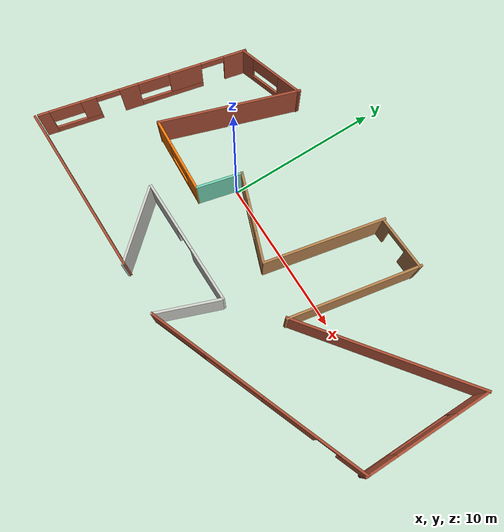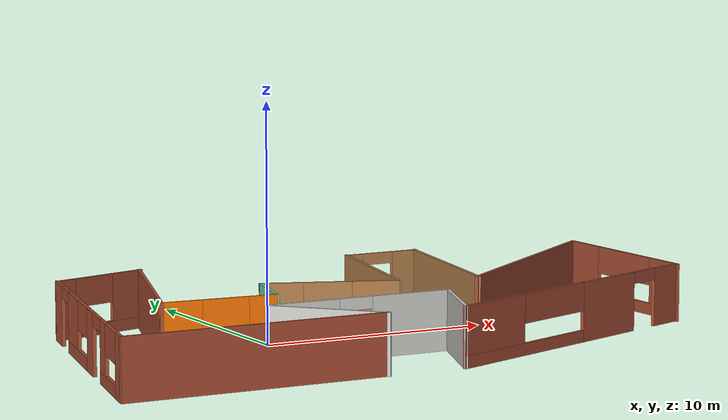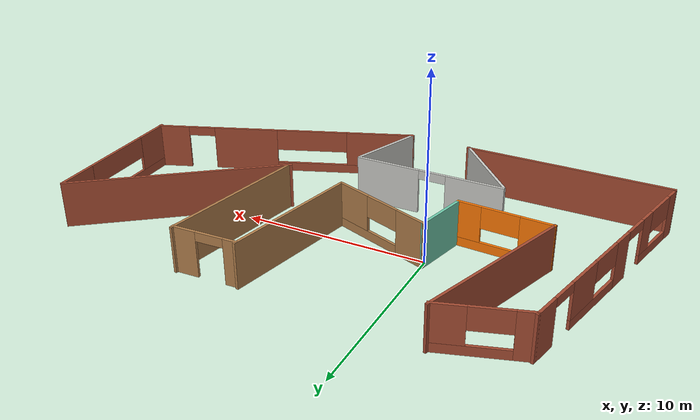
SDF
<?xml version='1.0'?>
<sdf version='1.6'>
  <model name='my_building'>
    <pose frame=''>4.00146 -0.959749 0 0 -0 0</pose>
    <link name='Wall_10'>
      <pose frame=''>-7.20518 -1.23967 0 0 0 -0.053362</pose>
      <visual name='Wall_10_Visual_0'>
        <pose frame=''>-1.65873 0 1.25 0 -0 0</pose>
        <geometry>
          <box>
            <size>1.79088 0.15 2.5</size>
          </box>
        </geometry>
        <material>
          <script>
            <uri>file://media/materials/scripts/gazebo.material</uri>
            <name>Gazebo/Grey</name>
          </script>
          <ambient>0.996078 0.47451 0.0196078 1</ambient>
        </material>
      </visual>
      <collision name='Wall_10_Collision_0'>
        <geometry>
          <box>
            <size>1.79088 0.15 2.5</size>
          </box>
        </geometry>
        <pose frame=''>-1.65873 0 1.25 0 -0 0</pose>
      </collision>
      <visual name='Wall_10_Visual_1'>
        <pose frame=''>0.895442 0 0.25 0 -0 0</pose>
        <geometry>
          <box>
            <size>3.31746 0.15 0.5</size>
          </box>
        </geometry>
        <material>
          <script>
            <uri>file://media/materials/scripts/gazebo.material</uri>
            <name>Gazebo/Grey</name>
          </script>
          <ambient>0.996078 0.47451 0.0196078 1</ambient>
        </material>
      </visual>
      <collision name='Wall_10_Collision_1'>
        <geometry>
          <box>
            <size>3.31746 0.15 0.5</size>
          </box>
        </geometry>
        <pose frame=''>0.895442 0 0.25 0 -0 0</pose>
      </collision>
      <visual name='Wall_10_Visual_2'>
        <pose frame=''>1.89544 0 1.5 0 -0 0</pose>
        <geometry>
          <box>
            <size>1.31746 0.15 2</size>
          </box>
        </geometry>
        <material>
          <script>
            <uri>file://media/materials/scripts/gazebo.material</uri>
            <name>Gazebo/Grey</name>
          </script>
          <ambient>0.996078 0.47451 0.0196078 1</ambient>
        </material>
      </visual>
      <collision name='Wall_10_Collision_2'>
        <geometry>
          <box>
            <size>1.31746 0.15 2</size>
          </box>
        </geometry>
        <pose frame=''>1.89544 0 1.5 0 -0 0</pose>
      </collision>
      <visual name='Wall_10_Visual_3'>
        <pose frame=''>0.236711 0 1.9 0 -0 0</pose>
        <geometry>
          <box>
            <size>2 0.15 1.2</size>
          </box>
        </geometry>
        <material>
          <script>
            <uri>file://media/materials/scripts/gazebo.material</uri>
            <name>Gazebo/Grey</name>
          </script>
          <ambient>0.996078 0.47451 0.0196078 1</ambient>
        </material>
      </visual>
      <collision name='Wall_10_Collision_3'>
        <geometry>
          <box>
            <size>2 0.15 1.2</size>
          </box>
        </geometry>
        <pose frame=''>0.236711 0 1.9 0 -0 0</pose>
      </collision>
    </link>
    <link name='Wall_11'>
      <collision name='Wall_11_Collision'>
        <geometry>
          <box>
            <size>3.02948 0.15 2.5</size>
          </box>
        </geometry>
        <pose frame=''>0 0 1.25 0 -0 0</pose>
      </collision>
      <visual name='Wall_11_Visual'>
        <pose frame=''>0 0 1.25 0 -0 0</pose>
        <geometry>
          <box>
            <size>3.02948 0.15 2.5</size>
          </box>
        </geometry>
        <material>
          <script>
            <uri>file://media/materials/scripts/gazebo.material</uri>
            <name>Gazebo/Grey</name>
          </script>
          <ambient>0.435294 0.796078 0.67451 1</ambient>
        </material>
      </visual>
      <pose frame=''>-4.3944 0.028361 0 0 -0 1.33612</pose>
    </link>
    <link name='Wall_12'>
      <pose frame=''>-1.39731 0.461222 0 0 0 -0.348539</pose>
      <visual name='Wall_12_Visual_0'>
        <pose frame=''>-1.99563 0 1.25 0 -0 0</pose>
        <geometry>
          <box>
            <size>1.82401 0.15 2.5</size>
          </box>
        </geometry>
        <material>
          <script>
            <uri>file://media/materials/scripts/gazebo.material</uri>
            <name>Gazebo/Wood</name>
          </script>
          <ambient>0.435294 0.796078 0.67451 1</ambient>
        </material>
      </visual>
      <collision name='Wall_12_Collision_0'>
        <geometry>
          <box>
            <size>1.82401 0.15 2.5</size>
          </box>
        </geometry>
        <pose frame=''>-1.99563 0 1.25 0 -0 0</pose>
      </collision>
      <visual name='Wall_12_Visual_1'>
        <pose frame=''>0.912006 0 0.25 0 -0 0</pose>
        <geometry>
          <box>
            <size>3.99125 0.15 0.5</size>
          </box>
        </geometry>
        <material>
          <script>
            <uri>file://media/materials/scripts/gazebo.material</uri>
            <name>Gazebo/Wood</name>
          </script>
          <ambient>0.435294 0.796078 0.67451 1</ambient>
        </material>
      </visual>
      <collision name='Wall_12_Collision_1'>
        <geometry>
          <box>
            <size>3.99125 0.15 0.5</size>
          </box>
        </geometry>
        <pose frame=''>0.912006 0 0.25 0 -0 0</pose>
      </collision>
      <visual name='Wall_12_Visual_2'>
        <pose frame=''>1.91201 0 1.5 0 -0 0</pose>
        <geometry>
          <box>
            <size>1.99125 0.15 2</size>
          </box>
        </geometry>
        <material>
          <script>
            <uri>file://media/materials/scripts/gazebo.material</uri>
            <name>Gazebo/Wood</name>
          </script>
          <ambient>0.435294 0.796078 0.67451 1</ambient>
        </material>
      </visual>
      <collision name='Wall_12_Collision_2'>
        <geometry>
          <box>
            <size>1.99125 0.15 2</size>
          </box>
        </geometry>
        <pose frame=''>1.91201 0 1.5 0 -0 0</pose>
      </collision>
      <visual name='Wall_12_Visual_3'>
        <pose frame=''>-0.083621 0 1.9 0 -0 0</pose>
        <geometry>
          <box>
            <size>2 0.15 1.2</size>
          </box>
        </geometry>
        <material>
          <script>
            <uri>file://media/materials/scripts/gazebo.material</uri>
            <name>Gazebo/Wood</name>
          </script>
          <ambient>0.435294 0.796078 0.67451 1</ambient>
        </material>
      </visual>
      <collision name='Wall_12_Collision_3'>
        <geometry>
          <box>
            <size>2 0.15 1.2</size>
          </box>
        </geometry>
        <pose frame=''>-0.083621 0 1.9 0 -0 0</pose>
      </collision>
    </link>
    <link name='Wall_13'>
      <collision name='Wall_13_Collision'>
        <geometry>
          <box>
            <size>7.73883 0.15 2.5</size>
          </box>
        </geometry>
        <pose frame=''>0 0 1.25 0 -0 0</pose>
      </collision>
      <visual name='Wall_13_Visual'>
        <pose frame=''>0 0 1.25 0 -0 0</pose>
        <geometry>
          <box>
            <size>7.73883 0.15 2.5</size>
          </box>
        </geometry>
        <material>
          <script>
            <uri>file://media/materials/scripts/gazebo.material</uri>
            <name>Gazebo/Wood</name>
          </script>
          <ambient>0.435294 0.796078 0.67451 1</ambient>
        </material>
      </visual>
      <pose frame=''>2.1093 3.20845 0 0 -0 1.36539</pose>
    </link>
    <link name='Wall_14'>
      <pose frame=''>4.60393 6.87033 0 0 -0 0.030657</pose>
      <visual name='Wall_14_Visual_0'>
        <pose frame=''>-1.41036 0 1.25 0 -0 0</pose>
        <geometry>
          <box>
            <size>0.772303 0.15 2.5</size>
          </box>
        </geometry>
        <material>
          <script>
            <uri>file://media/materials/scripts/gazebo.material</uri>
            <name>Gazebo/Wood</name>
          </script>
          <ambient>1 1 1 1</ambient>
        </material>
      </visual>
      <collision name='Wall_14_Collision_0'>
        <geometry>
          <box>
            <size>0.772303 0.15 2.5</size>
          </box>
        </geometry>
        <pose frame=''>-1.41036 0 1.25 0 -0 0</pose>
      </collision>
      <visual name='Wall_14_Visual_1'>
        <pose frame=''>1.13615 0 1.25 0 -0 0</pose>
        <geometry>
          <box>
            <size>1.32072 0.15 2.5</size>
          </box>
        </geometry>
        <material>
          <script>
            <uri>file://media/materials/scripts/gazebo.material</uri>
            <name>Gazebo/Wood</name>
          </script>
          <ambient>1 1 1 1</ambient>
        </material>
      </visual>
      <collision name='Wall_14_Collision_1'>
        <geometry>
          <box>
            <size>1.32072 0.15 2.5</size>
          </box>
        </geometry>
        <pose frame=''>1.13615 0 1.25 0 -0 0</pose>
      </collision>
      <visual name='Wall_14_Visual_2'>
        <pose frame=''>-0.27421 0 2.25 0 -0 0</pose>
        <geometry>
          <box>
            <size>1.5 0.15 0.5</size>
          </box>
        </geometry>
        <material>
          <script>
            <uri>file://media/materials/scripts/gazebo.material</uri>
            <name>Gazebo/Wood</name>
          </script>
          <ambient>1 1 1 1</ambient>
        </material>
      </visual>
      <collision name='Wall_14_Collision_2'>
        <geometry>
          <box>
            <size>1.5 0.15 0.5</size>
          </box>
        </geometry>
        <pose frame=''>-0.27421 0 2.25 0 -0 0</pose>
      </collision>
    </link>
    <link name='Wall_15'>
      <collision name='Wall_15_Collision'>
        <geometry>
          <box>
            <size>8.47447 0.15 2.5</size>
          </box>
        </geometry>
        <pose frame=''>0 0 1.25 0 -0 0</pose>
      </collision>
      <visual name='Wall_15_Visual'>
        <pose frame=''>0 0 1.25 0 -0 0</pose>
        <geometry>
          <box>
            <size>8.47447 0.15 2.5</size>
          </box>
        </geometry>
        <material>
          <script>
            <uri>file://media/materials/scripts/gazebo.material</uri>
            <name>Gazebo/Wood</name>
          </script>
          <ambient>1 1 1 1</ambient>
        </material>
      </visual>
      <pose frame=''>5.55071 2.93899 0 0 0 -1.75783</pose>
    </link>
    <link name='Wall_16'>
      <collision name='Wall_16_Collision'>
        <geometry>
          <box>
            <size>11.8484 0.15 2.5</size>
          </box>
        </geometry>
        <pose frame=''>0 0 1.25 0 -0 0</pose>
      </collision>
      <visual name='Wall_16_Visual'>
        <pose frame=''>0 0 1.25 0 -0 0</pose>
        <geometry>
          <box>
            <size>11.8484 0.15 2.5</size>
          </box>
        </geometry>
        <material>
          <script>
            <uri>file://media/materials/scripts/gazebo.material</uri>
            <name>Gazebo/Bricks</name>
          </script>
          <ambient>0.760784 0.662745 0.627451 1</ambient>
        </material>
      </visual>
      <pose frame=''>9.36619 2.38481 0 0 -0 0.649059</pose>
    </link>
    <link name='Wall_17'>
      <pose frame=''>14.026 1.76474 0 0 0 -1.5708</pose>
      <visual name='Wall_17_Visual_0'>
        <pose frame=''>-3.02356 0 1.25 0 -0 0</pose>
        <geometry>
          <box>
            <size>2.20289 0.15 2.5</size>
          </box>
        </geometry>
        <material>
          <script>
            <uri>file://media/materials/scripts/gazebo.material</uri>
            <name>Gazebo/Bricks</name>
          </script>
          <ambient>0.760784 0.662745 0.627451 1</ambient>
        </material>
      </visual>
      <collision name='Wall_17_Collision_0'>
        <geometry>
          <box>
            <size>2.20289 0.15 2.5</size>
          </box>
        </geometry>
        <pose frame=''>-3.02356 0 1.25 0 -0 0</pose>
      </collision>
      <visual name='Wall_17_Visual_1'>
        <pose frame=''>1.10144 0 0.25 0 -0 0</pose>
        <geometry>
          <box>
            <size>6.04711 0.15 0.5</size>
          </box>
        </geometry>
        <material>
          <script>
            <uri>file://media/materials/scripts/gazebo.material</uri>
            <name>Gazebo/Bricks</name>
          </script>
          <ambient>0.760784 0.662745 0.627451 1</ambient>
        </material>
      </visual>
      <collision name='Wall_17_Collision_1'>
        <geometry>
          <box>
            <size>6.04711 0.15 0.5</size>
          </box>
        </geometry>
        <pose frame=''>1.10144 0 0.25 0 -0 0</pose>
      </collision>
      <visual name='Wall_17_Visual_2'>
        <pose frame=''>3.10144 0 1.5 0 -0 0</pose>
        <geometry>
          <box>
            <size>2.04711 0.15 2</size>
          </box>
        </geometry>
        <material>
          <script>
            <uri>file://media/materials/scripts/gazebo.material</uri>
            <name>Gazebo/Bricks</name>
          </script>
          <ambient>0.760784 0.662745 0.627451 1</ambient>
        </material>
      </visual>
      <collision name='Wall_17_Collision_2'>
        <geometry>
          <box>
            <size>2.04711 0.15 2</size>
          </box>
        </geometry>
        <pose frame=''>3.10144 0 1.5 0 -0 0</pose>
      </collision>
      <visual name='Wall_17_Visual_3'>
        <pose frame=''>0.077887 0 1.9 0 -0 0</pose>
        <geometry>
          <box>
            <size>4 0.15 1.2</size>
          </box>
        </geometry>
        <material>
          <script>
            <uri>file://media/materials/scripts/gazebo.material</uri>
            <name>Gazebo/Bricks</name>
          </script>
          <ambient>0.760784 0.662745 0.627451 1</ambient>
        </material>
      </visual>
      <collision name='Wall_17_Collision_3'>
        <geometry>
          <box>
            <size>4 0.15 1.2</size>
          </box>
        </geometry>
        <pose frame=''>0.077887 0 1.9 0 -0 0</pose>
      </collision>
    </link>
    <link name='Wall_18'>
      <pose frame=''>7.23317 -4.80054 0 0 0 -2.77337</pose>
      <visual name='Wall_18_Visual_0'>
        <pose frame=''>-6.47131 0 1.25 0 -0 0</pose>
        <geometry>
          <box>
            <size>1.76906 0.15 2.5</size>
          </box>
        </geometry>
        <material>
          <script>
            <uri>file://media/materials/scripts/gazebo.material</uri>
            <name>Gazebo/Bricks</name>
          </script>
          <ambient>0.760784 0.662745 0.627451 1</ambient>
        </material>
      </visual>
      <collision name='Wall_18_Collision_0'>
        <geometry>
          <box>
            <size>1.76906 0.15 2.5</size>
          </box>
        </geometry>
        <pose frame=''>-6.47131 0 1.25 0 -0 0</pose>
      </collision>
      <visual name='Wall_18_Visual_1'>
        <pose frame=''>-2.27515 0 1.25 0 -0 0</pose>
        <geometry>
          <box>
            <size>3.62326 0.15 2.5</size>
          </box>
        </geometry>
        <material>
          <script>
            <uri>file://media/materials/scripts/gazebo.material</uri>
            <name>Gazebo/Bricks</name>
          </script>
          <ambient>0.760784 0.662745 0.627451 1</ambient>
        </material>
      </visual>
      <collision name='Wall_18_Collision_1'>
        <geometry>
          <box>
            <size>3.62326 0.15 2.5</size>
          </box>
        </geometry>
        <pose frame=''>-2.27515 0 1.25 0 -0 0</pose>
      </collision>
      <visual name='Wall_18_Visual_2'>
        <pose frame=''>3.44616 0 0.25 0 -0 0</pose>
        <geometry>
          <box>
            <size>7.81937 0.15 0.5</size>
          </box>
        </geometry>
        <material>
          <script>
            <uri>file://media/materials/scripts/gazebo.material</uri>
            <name>Gazebo/Bricks</name>
          </script>
          <ambient>0.760784 0.662745 0.627451 1</ambient>
        </material>
      </visual>
      <collision name='Wall_18_Collision_2'>
        <geometry>
          <box>
            <size>7.81937 0.15 0.5</size>
          </box>
        </geometry>
        <pose frame=''>3.44616 0 0.25 0 -0 0</pose>
      </collision>
      <visual name='Wall_18_Visual_3'>
        <pose frame=''>5.44616 0 1.5 0 -0 0</pose>
        <geometry>
          <box>
            <size>3.81937 0.15 2</size>
          </box>
        </geometry>
        <material>
          <script>
            <uri>file://media/materials/scripts/gazebo.material</uri>
            <name>Gazebo/Bricks</name>
          </script>
          <ambient>0.760784 0.662745 0.627451 1</ambient>
        </material>
      </visual>
      <collision name='Wall_18_Collision_3'>
        <geometry>
          <box>
            <size>3.81937 0.15 2</size>
          </box>
        </geometry>
        <pose frame=''>5.44616 0 1.5 0 -0 0</pose>
      </collision>
      <visual name='Wall_18_Visual_4'>
        <pose frame=''>1.53648 0 1.9 0 -0 0</pose>
        <geometry>
          <box>
            <size>4 0.15 1.2</size>
          </box>
        </geometry>
        <material>
          <script>
            <uri>file://media/materials/scripts/gazebo.material</uri>
            <name>Gazebo/Bricks</name>
          </script>
          <ambient>0.760784 0.662745 0.627451 1</ambient>
        </material>
      </visual>
      <collision name='Wall_18_Collision_4'>
        <geometry>
          <box>
            <size>4 0.15 1.2</size>
          </box>
        </geometry>
        <pose frame=''>1.53648 0 1.9 0 -0 0</pose>
      </collision>
      <visual name='Wall_18_Visual_5'>
        <pose frame=''>-4.83679 0 2.25 0 -0 0</pose>
        <geometry>
          <box>
            <size>1.5 0.15 0.5</size>
          </box>
        </geometry>
        <material>
          <script>
            <uri>file://media/materials/scripts/gazebo.material</uri>
            <name>Gazebo/Bricks</name>
          </script>
          <ambient>0.760784 0.662745 0.627451 1</ambient>
        </material>
      </visual>
      <collision name='Wall_18_Collision_5'>
        <geometry>
          <box>
            <size>1.5 0.15 0.5</size>
          </box>
        </geometry>
        <pose frame=''>-4.83679 0 2.25 0 -0 0</pose>
      </collision>
    </link>
    <link name='Wall_19'>
      <collision name='Wall_19_Collision'>
        <geometry>
          <box>
            <size>4.1326 0.15 2.5</size>
          </box>
        </geometry>
        <pose frame=''>0 0 1.25 0 -0 0</pose>
      </collision>
      <visual name='Wall_19_Visual'>
        <pose frame=''>0 0 1.25 0 -0 0</pose>
        <geometry>
          <box>
            <size>4.1326 0.15 2.5</size>
          </box>
        </geometry>
        <material>
          <script>
            <uri>file://media/materials/scripts/gazebo.material</uri>
            <name>Gazebo/CeilingTiled</name>
          </script>
          <ambient>1 1 1 1</ambient>
        </material>
      </visual>
      <pose frame=''>1.14396 -5.5585 0 0 -0 1.20967</pose>
    </link>
    <link name='Wall_20'>
      <pose frame=''>-2.20247 -3.5901 0 0 -0 3.14159</pose>
      <visual name='Wall_20_Visual_0'>
        <pose frame=''>-2.34523 0 1.25 0 -0 0</pose>
        <geometry>
          <box>
            <size>3.55955 0.15 2.5</size>
          </box>
        </geometry>
        <material>
          <script>
            <uri>file://media/materials/scripts/gazebo.material</uri>
            <name>Gazebo/CeilingTiled</name>
          </script>
          <ambient>0.921569 0.807843 0.615686 1</ambient>
        </material>
      </visual>
      <collision name='Wall_20_Collision_0'>
        <geometry>
          <box>
            <size>3.55955 0.15 2.5</size>
          </box>
        </geometry>
        <pose frame=''>-2.34523 0 1.25 0 -0 0</pose>
      </collision>
      <visual name='Wall_20_Visual_1'>
        <pose frame=''>2.52977 0 1.25 0 -0 0</pose>
        <geometry>
          <box>
            <size>3.19045 0.15 2.5</size>
          </box>
        </geometry>
        <material>
          <script>
            <uri>file://media/materials/scripts/gazebo.material</uri>
            <name>Gazebo/CeilingTiled</name>
          </script>
          <ambient>0.921569 0.807843 0.615686 1</ambient>
        </material>
      </visual>
      <collision name='Wall_20_Collision_1'>
        <geometry>
          <box>
            <size>3.19045 0.15 2.5</size>
          </box>
        </geometry>
        <pose frame=''>2.52977 0 1.25 0 -0 0</pose>
      </collision>
      <visual name='Wall_20_Visual_2'>
        <pose frame=''>0.184548 0 2.25 0 -0 0</pose>
        <geometry>
          <box>
            <size>1.5 0.15 0.5</size>
          </box>
        </geometry>
        <material>
          <script>
            <uri>file://media/materials/scripts/gazebo.material</uri>
            <name>Gazebo/CeilingTiled</name>
          </script>
          <ambient>0.921569 0.807843 0.615686 1</ambient>
        </material>
      </visual>
      <collision name='Wall_20_Collision_2'>
        <geometry>
          <box>
            <size>1.5 0.15 0.5</size>
          </box>
        </geometry>
        <pose frame=''>0.184548 0 2.25 0 -0 0</pose>
      </collision>
    </link>
    <link name='Wall_21'>
      <collision name='Wall_21_Collision'>
        <geometry>
          <box>
            <size>5.09839 0.15 2.5</size>
          </box>
        </geometry>
        <pose frame=''>0 0 1.25 0 -0 0</pose>
      </collision>
      <visual name='Wall_21_Visual'>
        <pose frame=''>0 0 1.25 0 -0 0</pose>
        <geometry>
          <box>
            <size>5.09839 0.15 2.5</size>
          </box>
        </geometry>
        <material>
          <script>
            <uri>file://media/materials/scripts/gazebo.material</uri>
            <name>Gazebo/CeilingTiled</name>
          </script>
          <ambient>0.921569 0.807843 0.615686 1</ambient>
        </material>
      </visual>
      <pose frame=''>-4.60426 -5.54091 0 0 0 -0.841746</pose>
    </link>
    <link name='Wall_22'>
      <collision name='Wall_22_Collision'>
        <geometry>
          <box>
            <size>11.25 0.15 2.5</size>
          </box>
        </geometry>
        <pose frame=''>0 0 1.25 0 -0 0</pose>
      </collision>
      <visual name='Wall_22_Visual'>
        <pose frame=''>0 0 1.25 0 -0 0</pose>
        <geometry>
          <box>
            <size>11.25 0.15 2.5</size>
          </box>
        </geometry>
        <material>
          <script>
            <uri>file://media/materials/scripts/gazebo.material</uri>
            <name>Gazebo/Bricks</name>
          </script>
          <ambient>0.996078 0.47451 0.0196078 1</ambient>
        </material>
      </visual>
      <pose frame=''>-8.50604 -7.31583 0 0 -0 3.14159</pose>
    </link>
    <link name='Wall_7'>
      <pose frame=''>-12.5684 -0.491172 0 0 -0 1.35294</pose>
      <visual name='Wall_7_Visual_0'>
        <pose frame=''>-6.46291 0 1.25 0 -0 0</pose>
        <geometry>
          <box>
            <size>0.733183 0.15 2.5</size>
          </box>
        </geometry>
        <material>
          <script>
            <uri>file://media/materials/scripts/gazebo.material</uri>
            <name>Gazebo/Bricks</name>
          </script>
          <ambient>0.996078 0.47451 0.0196078 1</ambient>
        </material>
      </visual>
      <collision name='Wall_7_Collision_0'>
        <geometry>
          <box>
            <size>0.733183 0.15 2.5</size>
          </box>
        </geometry>
        <pose frame=''>-6.46291 0 1.25 0 -0 0</pose>
      </collision>
      <visual name='Wall_7_Visual_1'>
        <pose frame=''>-0.982571 0 1.25 0 -0 0</pose>
        <geometry>
          <box>
            <size>1.23194 0.15 2.5</size>
          </box>
        </geometry>
        <material>
          <script>
            <uri>file://media/materials/scripts/gazebo.material</uri>
            <name>Gazebo/Bricks</name>
          </script>
          <ambient>0.996078 0.47451 0.0196078 1</ambient>
        </material>
      </visual>
      <collision name='Wall_7_Collision_1'>
        <geometry>
          <box>
            <size>1.23194 0.15 2.5</size>
          </box>
        </geometry>
        <pose frame=''>-0.982571 0 1.25 0 -0 0</pose>
      </collision>
      <visual name='Wall_7_Visual_2'>
        <pose frame=''>6.05834 0 1.25 0 -0 0</pose>
        <geometry>
          <box>
            <size>1.54232 0.15 2.5</size>
          </box>
        </geometry>
        <material>
          <script>
            <uri>file://media/materials/scripts/gazebo.material</uri>
            <name>Gazebo/Bricks</name>
          </script>
          <ambient>0.996078 0.47451 0.0196078 1</ambient>
        </material>
      </visual>
      <collision name='Wall_7_Collision_2'>
        <geometry>
          <box>
            <size>1.54232 0.15 2.5</size>
          </box>
        </geometry>
        <pose frame=''>6.05834 0 1.25 0 -0 0</pose>
      </collision>
      <visual name='Wall_7_Visual_3'>
        <pose frame=''>-4.59743 0 0.25 0 -0 0</pose>
        <geometry>
          <box>
            <size>2.99777 0.15 0.5</size>
          </box>
        </geometry>
        <material>
          <script>
            <uri>file://media/materials/scripts/gazebo.material</uri>
            <name>Gazebo/Bricks</name>
          </script>
          <ambient>0.996078 0.47451 0.0196078 1</ambient>
        </material>
      </visual>
      <collision name='Wall_7_Collision_3'>
        <geometry>
          <box>
            <size>2.99777 0.15 0.5</size>
          </box>
        </geometry>
        <pose frame=''>-4.59743 0 0.25 0 -0 0</pose>
      </collision>
      <visual name='Wall_7_Visual_4'>
        <pose frame=''>1.71029 0 0.25 0 -0 0</pose>
        <geometry>
          <box>
            <size>4.15378 0.15 0.5</size>
          </box>
        </geometry>
        <material>
          <script>
            <uri>file://media/materials/scripts/gazebo.material</uri>
            <name>Gazebo/Bricks</name>
          </script>
          <ambient>0.996078 0.47451 0.0196078 1</ambient>
        </material>
      </visual>
      <collision name='Wall_7_Collision_4'>
        <geometry>
          <box>
            <size>4.15378 0.15 0.5</size>
          </box>
        </geometry>
        <pose frame=''>1.71029 0 0.25 0 -0 0</pose>
      </collision>
      <visual name='Wall_7_Visual_5'>
        <pose frame=''>-3.59743 0 1.5 0 -0 0</pose>
        <geometry>
          <box>
            <size>0.997774 0.15 2</size>
          </box>
        </geometry>
        <material>
          <script>
            <uri>file://media/materials/scripts/gazebo.material</uri>
            <name>Gazebo/Bricks</name>
          </script>
          <ambient>0.996078 0.47451 0.0196078 1</ambient>
        </material>
      </visual>
      <collision name='Wall_7_Collision_5'>
        <geometry>
          <box>
            <size>0.997774 0.15 2</size>
          </box>
        </geometry>
        <pose frame=''>-3.59743 0 1.5 0 -0 0</pose>
      </collision>
      <visual name='Wall_7_Visual_6'>
        <pose frame=''>-3.59743 0 1.5 0 -0 0</pose>
        <geometry>
          <box>
            <size>0.997774 0.15 2</size>
          </box>
        </geometry>
        <material>
          <script>
            <uri>file://media/materials/scripts/gazebo.material</uri>
            <name>Gazebo/Bricks</name>
          </script>
          <ambient>0.996078 0.47451 0.0196078 1</ambient>
        </material>
      </visual>
      <collision name='Wall_7_Collision_6'>
        <geometry>
          <box>
            <size>0.997774 0.15 2</size>
          </box>
        </geometry>
        <pose frame=''>-3.59743 0 1.5 0 -0 0</pose>
      </collision>
      <visual name='Wall_7_Visual_7'>
        <pose frame=''>2.71029 0 1.5 0 -0 0</pose>
        <geometry>
          <box>
            <size>2.15378 0.15 2</size>
          </box>
        </geometry>
        <material>
          <script>
            <uri>file://media/materials/scripts/gazebo.material</uri>
            <name>Gazebo/Bricks</name>
          </script>
          <ambient>0.996078 0.47451 0.0196078 1</ambient>
        </material>
      </visual>
      <collision name='Wall_7_Collision_7'>
        <geometry>
          <box>
            <size>2.15378 0.15 2</size>
          </box>
        </geometry>
        <pose frame=''>2.71029 0 1.5 0 -0 0</pose>
      </collision>
      <visual name='Wall_7_Visual_8'>
        <pose frame=''>-5.09631 0 1.9 0 -0 0</pose>
        <geometry>
          <box>
            <size>2 0.15 1.2</size>
          </box>
        </geometry>
        <material>
          <script>
            <uri>file://media/materials/scripts/gazebo.material</uri>
            <name>Gazebo/Bricks</name>
          </script>
          <ambient>0.996078 0.47451 0.0196078 1</ambient>
        </material>
      </visual>
      <collision name='Wall_7_Collision_8'>
        <geometry>
          <box>
            <size>2 0.15 1.2</size>
          </box>
        </geometry>
        <pose frame=''>-5.09631 0 1.9 0 -0 0</pose>
      </collision>
      <visual name='Wall_7_Visual_9'>
        <pose frame=''>0.633398 0 1.9 0 -0 0</pose>
        <geometry>
          <box>
            <size>2 0.15 1.2</size>
          </box>
        </geometry>
        <material>
          <script>
            <uri>file://media/materials/scripts/gazebo.material</uri>
            <name>Gazebo/Bricks</name>
          </script>
          <ambient>0.996078 0.47451 0.0196078 1</ambient>
        </material>
      </visual>
      <collision name='Wall_7_Collision_9'>
        <geometry>
          <box>
            <size>2 0.15 1.2</size>
          </box>
        </geometry>
        <pose frame=''>0.633398 0 1.9 0 -0 0</pose>
      </collision>
      <visual name='Wall_7_Visual_10'>
        <pose frame=''>-2.34854 0 2.25 0 -0 0</pose>
        <geometry>
          <box>
            <size>1.5 0.15 0.5</size>
          </box>
        </geometry>
        <material>
          <script>
            <uri>file://media/materials/scripts/gazebo.material</uri>
            <name>Gazebo/Bricks</name>
          </script>
          <ambient>0.996078 0.47451 0.0196078 1</ambient>
        </material>
      </visual>
      <collision name='Wall_7_Collision_10'>
        <geometry>
          <box>
            <size>1.5 0.15 0.5</size>
          </box>
        </geometry>
        <pose frame=''>-2.34854 0 2.25 0 -0 0</pose>
      </collision>
      <visual name='Wall_7_Visual_11'>
        <pose frame=''>-2.34854 0 2.25 0 -0 0</pose>
        <geometry>
          <box>
            <size>1.5 0.15 0.5</size>
          </box>
        </geometry>
        <material>
          <script>
            <uri>file://media/materials/scripts/gazebo.material</uri>
            <name>Gazebo/Bricks</name>
          </script>
          <ambient>0.996078 0.47451 0.0196078 1</ambient>
        </material>
      </visual>
      <collision name='Wall_7_Collision_11'>
        <geometry>
          <box>
            <size>1.5 0.15 0.5</size>
          </box>
        </geometry>
        <pose frame=''>-2.34854 0 2.25 0 -0 0</pose>
      </collision>
      <visual name='Wall_7_Visual_12'>
        <pose frame=''>4.53718 0 2.25 0 -0 0</pose>
        <geometry>
          <box>
            <size>1.5 0.15 0.5</size>
          </box>
        </geometry>
        <material>
          <script>
            <uri>file://media/materials/scripts/gazebo.material</uri>
            <name>Gazebo/Bricks</name>
          </script>
          <ambient>0.996078 0.47451 0.0196078 1</ambient>
        </material>
      </visual>
      <collision name='Wall_7_Collision_12'>
        <geometry>
          <box>
            <size>1.5 0.15 0.5</size>
          </box>
        </geometry>
        <pose frame=''>4.53718 0 2.25 0 -0 0</pose>
      </collision>
    </link>
    <link name='Wall_8'>
      <pose frame=''>-8.97514 6.65806 0 0 -0 0.299999</pose>
      <visual name='Wall_8_Visual_0'>
        <pose frame=''>-1.83868 0 1.25 0 -0 0</pose>
        <geometry>
          <box>
            <size>0.938894 0.15 2.5</size>
          </box>
        </geometry>
        <material>
          <script>
            <uri>file://media/materials/scripts/gazebo.material</uri>
            <name>Gazebo/Bricks</name>
          </script>
          <ambient>0.996078 0.47451 0.0196078 1</ambient>
        </material>
      </visual>
      <collision name='Wall_8_Collision_0'>
        <geometry>
          <box>
            <size>0.938894 0.15 2.5</size>
          </box>
        </geometry>
        <pose frame=''>-1.83868 0 1.25 0 -0 0</pose>
      </collision>
      <visual name='Wall_8_Visual_1'>
        <pose frame=''>0.469447 0 0.25 0 -0 0</pose>
        <geometry>
          <box>
            <size>3.67735 0.15 0.5</size>
          </box>
        </geometry>
        <material>
          <script>
            <uri>file://media/materials/scripts/gazebo.material</uri>
            <name>Gazebo/Bricks</name>
          </script>
          <ambient>0.996078 0.47451 0.0196078 1</ambient>
        </material>
      </visual>
      <collision name='Wall_8_Collision_1'>
        <geometry>
          <box>
            <size>3.67735 0.15 0.5</size>
          </box>
        </geometry>
        <pose frame=''>0.469447 0 0.25 0 -0 0</pose>
      </collision>
      <visual name='Wall_8_Visual_2'>
        <pose frame=''>1.46945 0 1.5 0 -0 0</pose>
        <geometry>
          <box>
            <size>1.67735 0.15 2</size>
          </box>
        </geometry>
        <material>
          <script>
            <uri>file://media/materials/scripts/gazebo.material</uri>
            <name>Gazebo/Bricks</name>
          </script>
          <ambient>0.996078 0.47451 0.0196078 1</ambient>
        </material>
      </visual>
      <collision name='Wall_8_Collision_2'>
        <geometry>
          <box>
            <size>1.67735 0.15 2</size>
          </box>
        </geometry>
        <pose frame=''>1.46945 0 1.5 0 -0 0</pose>
      </collision>
      <visual name='Wall_8_Visual_3'>
        <pose frame=''>-0.369229 0 1.9 0 -0 0</pose>
        <geometry>
          <box>
            <size>2 0.15 1.2</size>
          </box>
        </geometry>
        <material>
          <script>
            <uri>file://media/materials/scripts/gazebo.material</uri>
            <name>Gazebo/Bricks</name>
          </script>
          <ambient>0.996078 0.47451 0.0196078 1</ambient>
        </material>
      </visual>
      <collision name='Wall_8_Collision_3'>
        <geometry>
          <box>
            <size>2 0.15 1.2</size>
          </box>
        </geometry>
        <pose frame=''>-0.369229 0 1.9 0 -0 0</pose>
      </collision>
    </link>
    <link name='Wall_9'>
      <collision name='Wall_9_Collision'>
        <geometry>
          <box>
            <size>9.16616 0.15 2.5</size>
          </box>
        </geometry>
        <pose frame=''>0 0 1.25 0 -0 0</pose>
      </collision>
      <visual name='Wall_9_Visual'>
        <pose frame=''>0 0 1.25 0 -0 0</pose>
        <geometry>
          <box>
            <size>9.16616 0.15 2.5</size>
          </box>
        </geometry>
        <material>
          <script>
            <uri>file://media/materials/scripts/gazebo.material</uri>
            <name>Gazebo/Bricks</name>
          </script>
          <ambient>0.921569 0.807843 0.615686 1</ambient>
        </material>
      </visual>
      <pose frame=''>-8.26146 3.14483 0 0 0 -1.89117</pose>
    </link>
    <static>1</static>
  </model>
</sdf>
